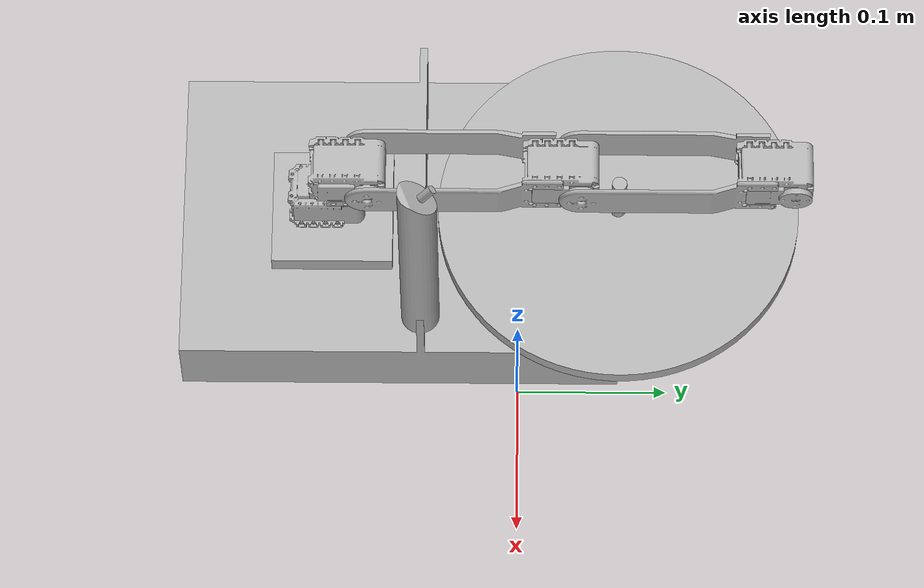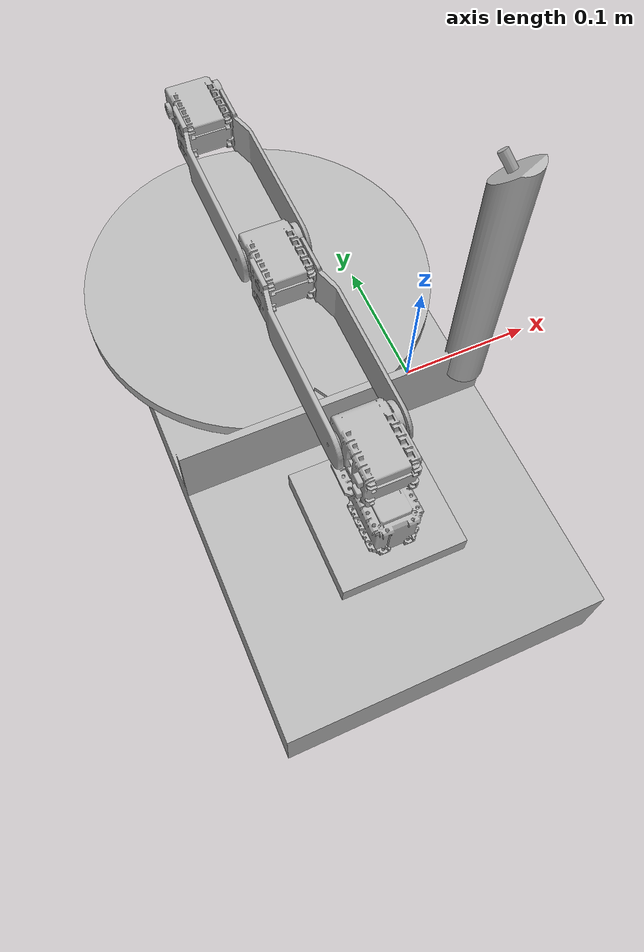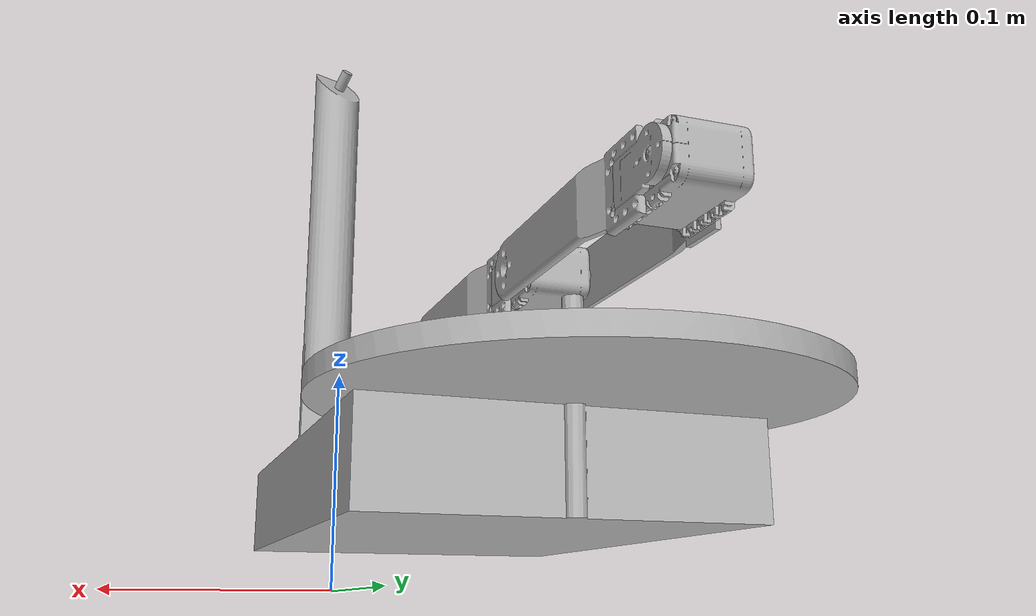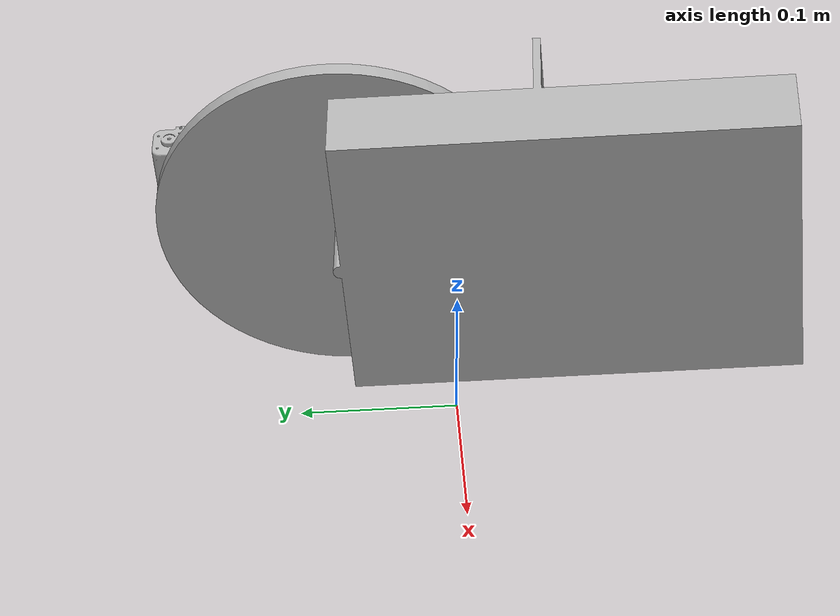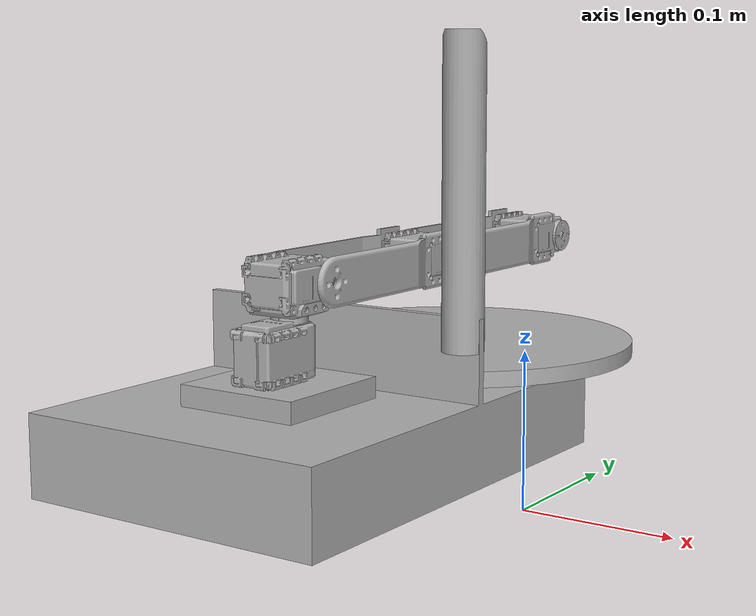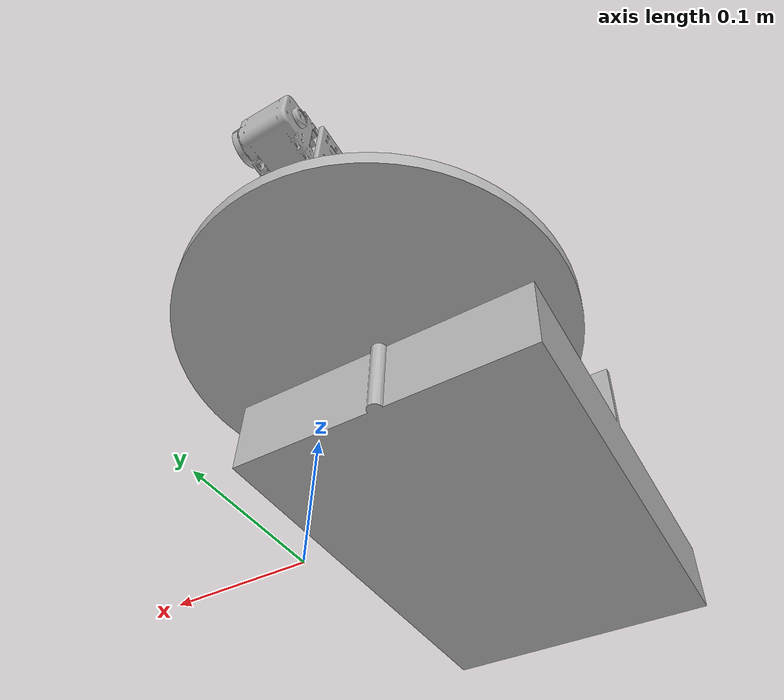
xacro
<?xml version="1.0" ?>
<robot name="stubby_v2" xmlns:xacro="http://www.ros.org/wiki/xacro">

<xacro:include filename="$(find stubby_v2_description)/urdf/materials.xacro" />
<xacro:include filename="$(find stubby_v2_description)/urdf/stubby_v2.trans" />
<xacro:include filename="$(find stubby_v2_description)/urdf/stubby_v2.gazebo" />
<link name="world">
</link>
<link name="base_link">
  <inertial>
    <origin rpy="0 0 0" xyz="-0.09272820367532823 -0.07797949900652808 0.05592873074646475"/>
    <mass value="2.9540424862254815"/>
    <inertia ixx="0.021201" ixy="0.0" ixz="-0.0" iyy="0.010579" iyz="-6.6e-05" izz="0.030285"/>
  </inertial>
  <visual>
    <origin rpy="0 0 0" xyz="0 0 0"/>
    <geometry>
      <mesh filename="package://stubby_v2_description/meshes/base_link.stl" scale="0.001 0.001 0.001"/>
    </geometry>
    <material name="silver"/>
  </visual>
  <collision>
    <origin rpy="0 0 0" xyz="0 0 0"/>
    <geometry>
      <mesh filename="package://stubby_v2_description/meshes/base_link.stl" scale="0.001 0.001 0.001"/>
    </geometry>
  </collision>
</link>

<link name="Component2_1">
  <inertial>
    <origin rpy="0 0 0" xyz="-3.224442696270202e-05 -8.504841622625214e-09 0.0023375523743028037"/>
    <mass value="0.02417691266422109"/>
    <inertia ixx="1e-06" ixy="-0.0" ixz="-0.0" iyy="4e-06" iyz="-0.0" izz="5e-06"/>
  </inertial>
  <visual>
    <origin rpy="0 0 0" xyz="0.092728 0.113547 -0.130031"/>
    <geometry>
      <mesh filename="package://stubby_v2_description/meshes/Component2_1.stl" scale="0.001 0.001 0.001"/>
    </geometry>
    <material name="silver"/>
  </visual>
  <collision>
    <origin rpy="0 0 0" xyz="0.092728 0.113547 -0.130031"/>
    <geometry>
      <mesh filename="package://stubby_v2_description/meshes/Component2_1.stl" scale="0.001 0.001 0.001"/>
    </geometry>
  </collision>
</link>

<link name="Component3_1">
  <inertial>
    <origin rpy="0 0 0" xyz="-0.01494162093593987 0.001737713524194412 0.013531071135256645"/>
    <mass value="0.04244091097100989"/>
    <inertia ixx="1e-05" ixy="-0.0" ixz="-0.0" iyy="7e-06" iyz="0.0" izz="1.2e-05"/>
  </inertial>
  <visual>
    <origin rpy="0 0 0" xyz="0.076728 0.113547 -0.135531"/>
    <geometry>
      <mesh filename="package://stubby_v2_description/meshes/Component3_1.stl" scale="0.001 0.001 0.001"/>
    </geometry>
    <material name="silver"/>
  </visual>
  <collision>
    <origin rpy="0 0 0" xyz="0.076728 0.113547 -0.135531"/>
    <geometry>
      <mesh filename="package://stubby_v2_description/meshes/Component3_1.stl" scale="0.001 0.001 0.001"/>
    </geometry>
  </collision>
</link>

<link name="Component4_1">
  <inertial>
    <origin rpy="0 0 0" xyz="0.0005042569626790283 0.05420104483193016 8.87265591151265e-06"/>
    <mass value="0.0869111581488203"/>
    <inertia ixx="0.000129" ixy="4e-06" ixz="0.0" iyy="7e-06" iyz="-0.0" izz="0.000122"/>
  </inertial>
  <visual>
    <origin rpy="0 0 0" xyz="0.071728 0.099047 -0.149031"/>
    <geometry>
      <mesh filename="package://stubby_v2_description/meshes/Component4_1.stl" scale="0.001 0.001 0.001"/>
    </geometry>
    <material name="silver"/>
  </visual>
  <collision>
    <origin rpy="0 0 0" xyz="0.071728 0.099047 -0.149031"/>
    <geometry>
      <mesh filename="package://stubby_v2_description/meshes/Component4_1.stl" scale="0.001 0.001 0.001"/>
    </geometry>
  </collision>
</link>

<link name="Component5_1">
  <inertial>
    <origin rpy="0 0 0" xyz="-0.01494162093593955 0.01773771352419563 -0.013468928864737328"/>
    <mass value="0.04244091097100989"/>
    <inertia ixx="1e-05" ixy="-0.0" ixz="-0.0" iyy="7e-06" iyz="0.0" izz="1.2e-05"/>
  </inertial>
  <visual>
    <origin rpy="0 0 0" xyz="0.076728 -0.010453 -0.162531"/>
    <geometry>
      <mesh filename="package://stubby_v2_description/meshes/Component5_1.stl" scale="0.001 0.001 0.001"/>
    </geometry>
    <material name="silver"/>
  </visual>
  <collision>
    <origin rpy="0 0 0" xyz="0.076728 -0.010453 -0.162531"/>
    <geometry>
      <mesh filename="package://stubby_v2_description/meshes/Component5_1.stl" scale="0.001 0.001 0.001"/>
    </geometry>
  </collision>
</link>

<link name="Component6_1">
  <inertial>
    <origin rpy="0 0 0" xyz="0.0005042569626794308 0.05420104483193215 8.87265591778541e-06"/>
    <mass value="0.0869111581488203"/>
    <inertia ixx="0.000129" ixy="4e-06" ixz="0.0" iyy="7e-06" iyz="-0.0" izz="0.000122"/>
  </inertial>
  <visual>
    <origin rpy="0 0 0" xyz="0.071728 -0.040953 -0.149031"/>
    <geometry>
      <mesh filename="package://stubby_v2_description/meshes/Component6_1.stl" scale="0.001 0.001 0.001"/>
    </geometry>
    <material name="silver"/>
  </visual>
  <collision>
    <origin rpy="0 0 0" xyz="0.071728 -0.040953 -0.149031"/>
    <geometry>
      <mesh filename="package://stubby_v2_description/meshes/Component6_1.stl" scale="0.001 0.001 0.001"/>
    </geometry>
  </collision>
</link>

<link name="Component9_1">
  <inertial>
    <origin rpy="0 0 0" xyz="-0.014941620935938649 0.001737713524194634 -0.013468928864732499"/>
    <mass value="0.04244091097100989"/>
    <inertia ixx="1e-05" ixy="-0.0" ixz="-0.0" iyy="7e-06" iyz="0.0" izz="1.2e-05"/>
  </inertial>
  <visual>
    <origin rpy="0 0 0" xyz="0.076728 -0.166453 -0.162531"/>
    <geometry>
      <mesh filename="package://stubby_v2_description/meshes/Component9_1.stl" scale="0.001 0.001 0.001"/>
    </geometry>
    <material name="silver"/>
  </visual>
  <collision>
    <origin rpy="0 0 0" xyz="0.076728 -0.166453 -0.162531"/>
    <geometry>
      <mesh filename="package://stubby_v2_description/meshes/Component9_1.stl" scale="0.001 0.001 0.001"/>
    </geometry>
  </collision>
</link>

<link name="Component10_1">
  <inertial>
    <origin rpy="0 0 0" xyz="-2.81021708598006e-06 4.188465900133165e-05 0.006457240588631688"/>
    <mass value="0.6475846843052765"/>
    <inertia ixx="0.000356" ixy="-0.0" ixz="0.0" iyy="0.000357" iyz="-0.0" izz="0.000695"/>
  </inertial>
  <visual>
    <origin rpy="0 0 0" xyz="0.092728 0.123547 -0.080031"/>
    <geometry>
      <mesh filename="package://stubby_v2_description/meshes/Component10_1.stl" scale="0.001 0.001 0.001"/>
    </geometry>
    <material name="silver"/>
  </visual>
  <collision>
    <origin rpy="0 0 0" xyz="0.092728 0.123547 -0.080031"/>
    <geometry>
      <mesh filename="package://stubby_v2_description/meshes/Component10_1.stl" scale="0.001 0.001 0.001"/>
    </geometry>
  </collision>
</link>

<link name="Component1_1">
  <inertial>
    <origin rpy="0 0 0" xyz="-3.129606099233628e-05 -0.012762286475803783 0.017058561488981785"/>
    <mass value="0.04244091097100989"/>
    <inertia ixx="1.2e-05" ixy="-0.0" ixz="0.0" iyy="7e-06" iyz="-0.0" izz="1e-05"/>
  </inertial>
  <visual>
    <origin rpy="0 0 0" xyz="0.092728 0.113547 -0.093031"/>
    <geometry>
      <mesh filename="package://stubby_v2_description/meshes/Component1_1.stl" scale="0.001 0.001 0.001"/>
    </geometry>
    <material name="silver"/>
  </visual>
  <collision>
    <origin rpy="0 0 0" xyz="0.092728 0.113547 -0.093031"/>
    <geometry>
      <mesh filename="package://stubby_v2_description/meshes/Component1_1.stl" scale="0.001 0.001 0.001"/>
    </geometry>
  </collision>
</link>

<link name="platform1_1">
  <inertial>
    <origin rpy="0 0 0" xyz="-2.0367532981013792e-07 0.00020212359961643833 0.004993691795471461"/>
    <mass value="0.4507941946898463"/>
    <inertia ixx="0.001622" ixy="-0.0" ixz="-0.0" iyy="0.001632" iyz="-0.0" izz="0.003247"/>
  </inertial>
  <visual>
    <origin rpy="0 0 0" xyz="0.092728 -0.066453 -0.080031"/>
    <geometry>
      <mesh filename="package://stubby_v2_description/meshes/platform1_1.stl" scale="0.001 0.001 0.001"/>
    </geometry>
    <material name="silver"/>
  </visual>
  <collision>
    <origin rpy="0 0 0" xyz="0.092728 -0.066453 -0.080031"/>
    <geometry>
      <mesh filename="package://stubby_v2_description/meshes/platform1_1.stl" scale="0.001 0.001 0.001"/>
    </geometry>
  </collision>
</link>

<link name="susMount1_1">
  <inertial>
    <origin rpy="0 0 0" xyz="-0.01969504152627085 0.28954434793993067 0.18389206162632737"/>
    <mass value="0.6557743433400158"/>
    <inertia ixx="0.001646" ixy="-0.0" ixz="-4e-06" iyy="0.001645" iyz="1e-05" izz="5.2e-05"/>
  </inertial>
  <visual>
    <origin rpy="0 0 0" xyz="-0.014544 0.353578 -0.016184"/>
    <geometry>
      <mesh filename="package://stubby_v2_description/meshes/susMount1_1.stl" scale="0.001 0.001 0.001"/>
    </geometry>
    <material name="silver"/>
  </visual>
  <collision>
    <origin rpy="0 0 0" xyz="-0.014544 0.353578 -0.016184"/>
    <geometry>
      <mesh filename="package://stubby_v2_description/meshes/susMount1_1.stl" scale="0.001 0.001 0.001"/>
    </geometry>
  </collision>
</link>

<link name="Component7_1">
  <inertial>
    <origin rpy="0 0 0" xyz="-0.003882539947115307 -0.061571170681412546 -0.013400429435465377"/>
    <mass value="0.09556389824775222"/>
    <inertia ixx="0.000154" ixy="-3e-06" ixz="-0.0" iyy="8e-06" iyz="-1e-06" izz="0.000147"/>
  </inertial>
  <visual>
    <origin rpy="0 0 0" xyz="0.108728 -0.018453 -0.162531"/>
    <geometry>
      <mesh filename="package://stubby_v2_description/meshes/Component7_1.stl" scale="0.001 0.001 0.001"/>
    </geometry>
    <material name="silver"/>
  </visual>
  <collision>
    <origin rpy="0 0 0" xyz="0.108728 -0.018453 -0.162531"/>
    <geometry>
      <mesh filename="package://stubby_v2_description/meshes/Component7_1.stl" scale="0.001 0.001 0.001"/>
    </geometry>
  </collision>
</link>

<link name="Component8_1">
  <inertial>
    <origin rpy="0 0 0" xyz="-0.003882540109493293 -0.06157117068141399 -0.013400429435460381"/>
    <mass value="0.09556389824775206"/>
    <inertia ixx="0.000154" ixy="-3e-06" ixz="-0.0" iyy="8e-06" iyz="-1e-06" izz="0.000147"/>
  </inertial>
  <visual>
    <origin rpy="0 0 0" xyz="0.108728 -0.158453 -0.162531"/>
    <geometry>
      <mesh filename="package://stubby_v2_description/meshes/Component8_1.stl" scale="0.001 0.001 0.001"/>
    </geometry>
    <material name="silver"/>
  </visual>
  <collision>
    <origin rpy="0 0 0" xyz="0.108728 -0.158453 -0.162531"/>
    <geometry>
      <mesh filename="package://stubby_v2_description/meshes/Component8_1.stl" scale="0.001 0.001 0.001"/>
    </geometry>
  </collision>
</link>

<gazebo>
    <plugin name="gazebo_ros_control" filename="libgazebo_ros_control.so">
        <robotNamespace>/stubby_v2</robotNamespace>
    </plugin>
</gazebo>

<joint name="worldLink" type="fixed">
    <parent link="world"/>
    <child link="base_link"/>
</joint>
<joint name="Rev1" type="continuous">
  <origin rpy="0 0 0" xyz="0.0 0.0 0.037"/>
  <parent link="Component1_1"/>
  <child link="Component2_1"/>
  <axis xyz="-0.0 -0.0 1.0"/>
</joint>

<joint name="Rigid3" type="fixed">
  <origin rpy="0 0 0" xyz="0.016 0.0 0.0055"/>
  <parent link="Component2_1"/>
  <child link="Component3_1"/>
</joint>

<joint name="Rev2" type="continuous">
  <origin rpy="0 0 0" xyz="0.005 0.0145 0.0135"/>
  <parent link="Component3_1"/>
  <child link="Component4_1"/>
  <axis xyz="1.0 -0.0 -0.0"/>
</joint>

<joint name="Rigid5" type="fixed">
  <origin rpy="0 0 0" xyz="-0.005 0.1095 0.0135"/>
  <parent link="Component4_1"/>
  <child link="Component5_1"/>
</joint>

<joint name="Rev3" type="continuous">
  <origin rpy="0 0 0" xyz="0.005 0.0305 -0.0135"/>
  <parent link="Component5_1"/>
  <child link="Component6_1"/>
  <axis xyz="1.0 -0.0 -0.0"/>
</joint>

<joint name="Rigid12" type="fixed">
  <origin rpy="0 0 0" xyz="-0.005 0.1255 0.0135"/>
  <parent link="Component6_1"/>
  <child link="Component9_1"/>
</joint>

<joint name="Rigid13" type="fixed">
  <origin rpy="0 0 0" xyz="-0.092728 -0.123547 0.080031"/>
  <parent link="base_link"/>
  <child link="Component10_1"/>
</joint>

<joint name="Rigid14" type="fixed">
  <origin rpy="0 0 0" xyz="0.0 0.01 0.013"/>
  <parent link="Component10_1"/>
  <child link="Component1_1"/>
</joint>

<joint name="platformAngle" type="continuous">
  <origin rpy="0 0 0" xyz="-0.092728 0.066453 0.080031"/>
  <parent link="base_link"/>
  <child link="platform1_1"/>
  <axis xyz="-0.0 -0.0 1.0"/>
</joint>

<joint name="Rigid18" type="fixed">
  <origin rpy="0 0 0" xyz="0.014544 -0.353578 0.016184"/>
  <parent link="base_link"/>
  <child link="susMount1_1"/>
</joint>

<joint name="Rigid19" type="fixed">
  <origin rpy="0 0 0" xyz="-0.032 0.008 0.0"/>
  <parent link="Component5_1"/>
  <child link="Component7_1"/>
</joint>

<joint name="Rigid20" type="fixed">
  <origin rpy="0 0 0" xyz="-0.032 -0.008 0.0"/>
  <parent link="Component9_1"/>
  <child link="Component8_1"/>
</joint>

</robot>

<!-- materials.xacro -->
<robot name="stubby_v2" xmlns:xacro="http://www.ros.org/wiki/xacro" >

<material name="silver">
  <color rgba="0.700 0.700 0.700 1.000"/>
</material>

</robot>

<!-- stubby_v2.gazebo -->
<robot name="stubby_v2" xmlns:xacro="http://www.ros.org/wiki/xacro" >

<xacro:property name="body_color" value="Gazebo/Silver" />

<gazebo reference="base_link">
  <material>${body_color}</material>
  <mu1>0.2</mu1>
  <mu2>0.2</mu2>
  <selfCollide>true</selfCollide>
  <gravity>true</gravity>
</gazebo>

<gazebo reference="Component2_1">
  <material>${body_color}</material>
  <mu1>0.2</mu1>
  <mu2>0.2</mu2>
  <selfCollide>true</selfCollide>
</gazebo>

<gazebo reference="Component3_1">
  <material>${body_color}</material>
  <mu1>0.2</mu1>
  <mu2>0.2</mu2>
  <selfCollide>true</selfCollide>
</gazebo>

<gazebo reference="Component4_1">
  <material>${body_color}</material>
  <mu1>0.2</mu1>
  <mu2>0.2</mu2>
  <selfCollide>true</selfCollide>
</gazebo>

<gazebo reference="Component5_1">
  <material>${body_color}</material>
  <mu1>0.2</mu1>
  <mu2>0.2</mu2>
  <selfCollide>true</selfCollide>
</gazebo>

<gazebo reference="Component6_1">
  <material>${body_color}</material>
  <mu1>0.2</mu1>
  <mu2>0.2</mu2>
  <selfCollide>true</selfCollide>
</gazebo>

<gazebo reference="Component9_1">
  <material>${body_color}</material>
  <mu1>0.2</mu1>
  <mu2>0.2</mu2>
  <selfCollide>true</selfCollide>
</gazebo>

<gazebo reference="Component10_1">
  <material>${body_color}</material>
  <mu1>0.2</mu1>
  <mu2>0.2</mu2>
  <selfCollide>true</selfCollide>
</gazebo>

<gazebo reference="Component1_1">
  <material>${body_color}</material>
  <mu1>0.2</mu1>
  <mu2>0.2</mu2>
  <selfCollide>true</selfCollide>
</gazebo>

<gazebo reference="platform1_1">
  <material>${body_color}</material>
  <mu1>0.2</mu1>
  <mu2>0.2</mu2>
  <selfCollide>true</selfCollide>
</gazebo>

<gazebo reference="susMount1_1">
  <material>${body_color}</material>
  <mu1>0.2</mu1>
  <mu2>0.2</mu2>
  <selfCollide>true</selfCollide>
</gazebo>

<gazebo reference="Component7_1">
  <material>${body_color}</material>
  <mu1>0.2</mu1>
  <mu2>0.2</mu2>
  <selfCollide>true</selfCollide>
</gazebo>

<gazebo reference="Component8_1">
  <material>${body_color}</material>
  <mu1>0.2</mu1>
  <mu2>0.2</mu2>
  <selfCollide>true</selfCollide>
</gazebo>

</robot>
